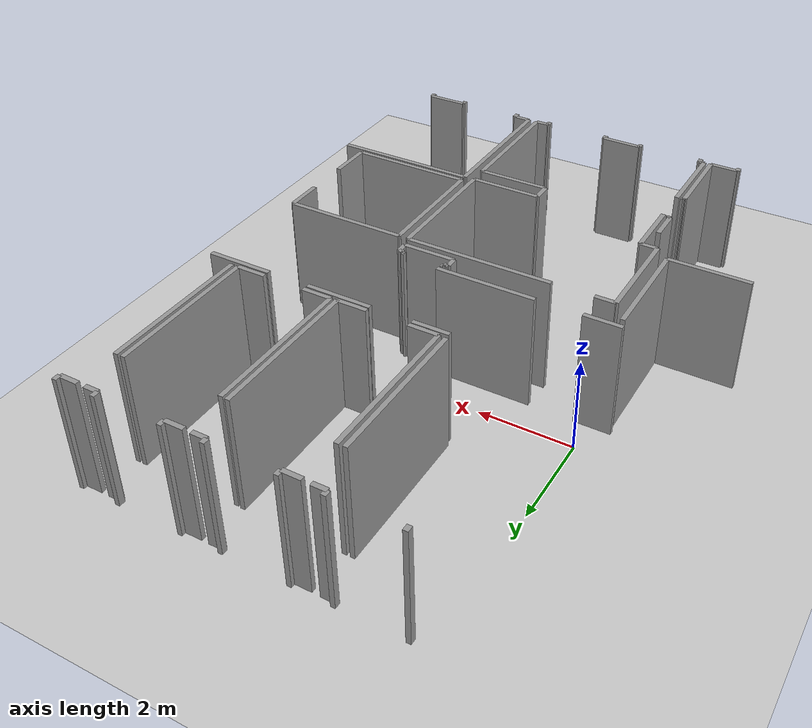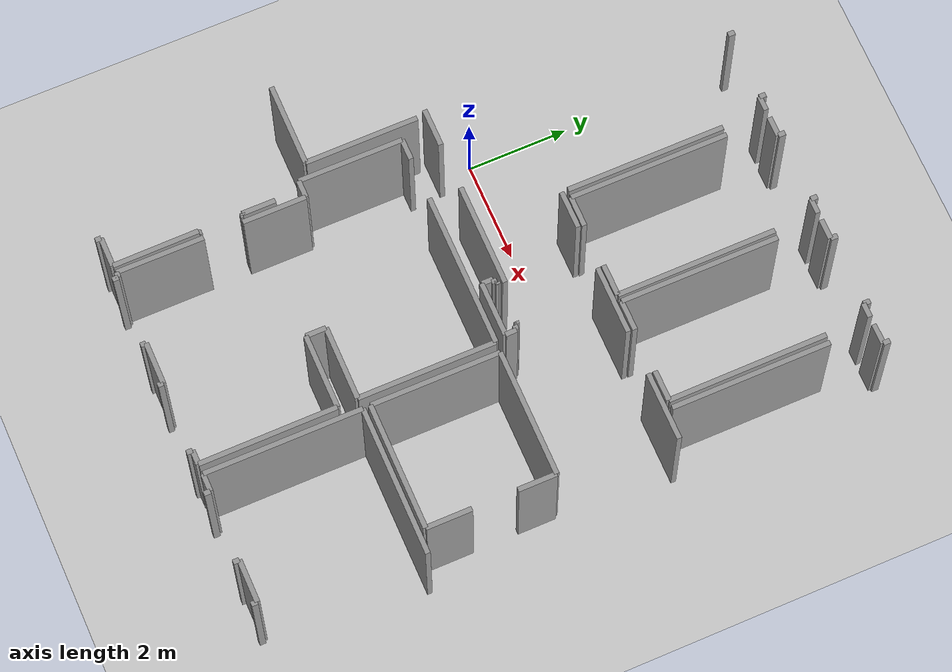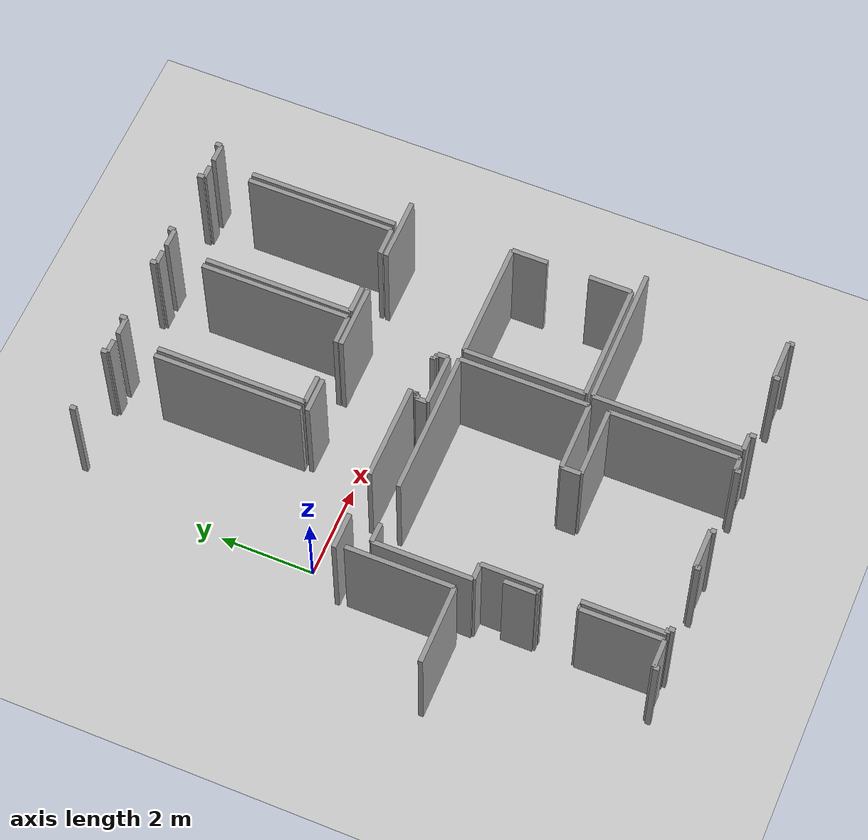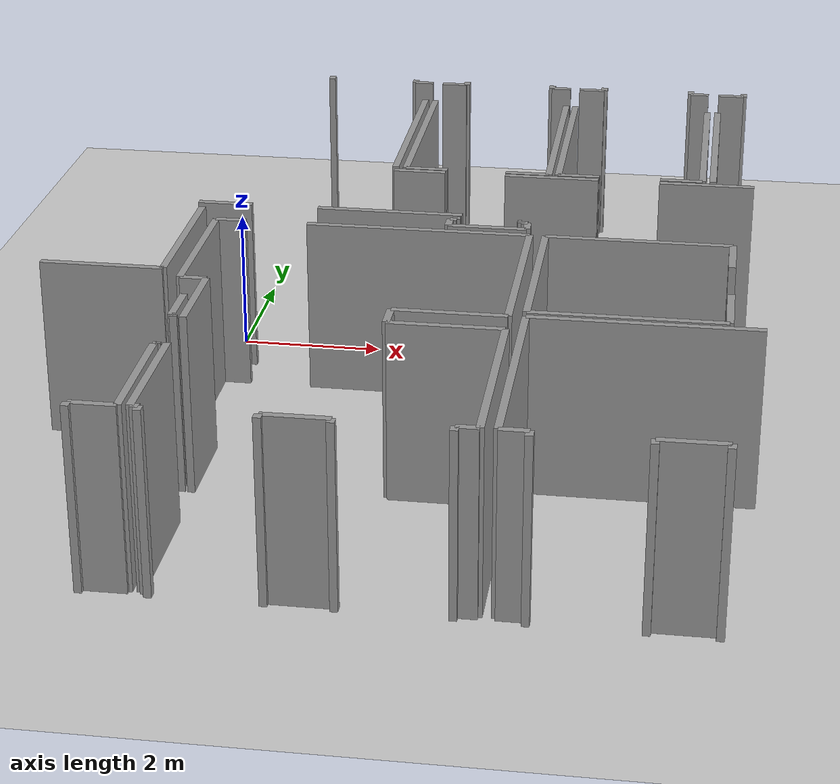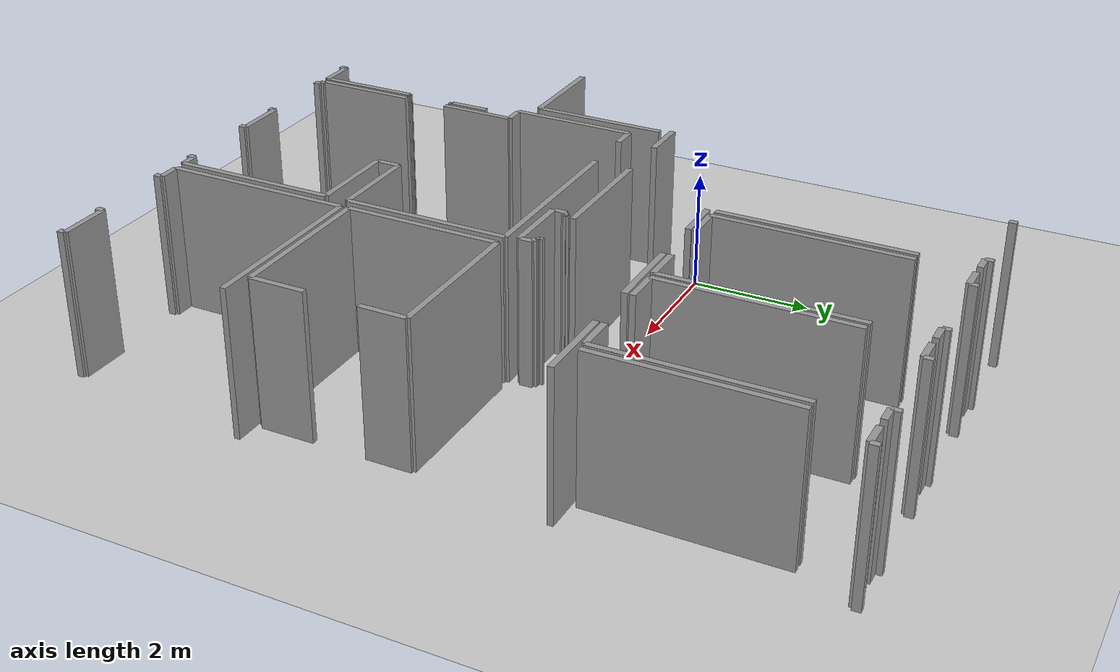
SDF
<sdf version="1.6">
 <world name="default">
  <model name="ground_plane">
   <static>1</static>
   <link name="link">
    <collision name="collision">
     <geometry><plane><normal>0 0 1</normal><size>100 100</size></plane></geometry>
     <surface><friction><ode><mu>100</mu><mu2>50</mu2></ode></friction></surface>
    </collision>
    <visual name="visual">
     <cast_shadows>0</cast_shadows>
     <geometry><plane><normal>0 0 1</normal><size>100 100</size></plane></geometry>
     <material>
      <script><uri>file://media/materials/scripts/gazebo.material</uri><name>Gazebo/Grey</name></script>
     </material>
    </visual>
   </link>
  </model>
  <model name="0510025537_Layout1_PLAN3">
   <static>1</static>
   <link name="Wall_104">
    <collision name="Wall_104_Collision">
     <geometry><box><size>0.597953866684 0.1 2.5</size></box></geometry>
     <pose>0.298976933342 0 1.25 0 0 0</pose>
    </collision>
    <visual name="Wall_104_Visual">
     <pose>0.298976933342 0 1.25 0 0 0</pose>
     <geometry><box><size>0.597953866684 0.1 2.5</size></box></geometry>
     <material>
      <script><uri>file://media/materials/scripts/gazebo.material</uri><name>Gazebo/Grey</name></script>
      <ambient>1 1 1 1</ambient>
     </material>
    </visual>
    <pose>20.3984050327 -12.51546038 0 0 0 3.14159265359</pose>
   </link>
   <link name="Wall_105">
    <collision name="Wall_105_Collision">
     <geometry><box><size>0.113109233018 0.1 2.5</size></box></geometry>
     <pose>0.0565546165089 0 1.25 0 0 0</pose>
    </collision>
    <visual name="Wall_105_Visual">
     <pose>0.0565546165089 0 1.25 0 0 0</pose>
     <geometry><box><size>0.113109233018 0.1 2.5</size></box></geometry>
     <material>
      <script><uri>file://media/materials/scripts/gazebo.material</uri><name>Gazebo/Grey</name></script>
      <ambient>1 1 1 1</ambient>
     </material>
    </visual>
    <pose>19.800451166 -12.51546038 0 0 0 -1.57079632679</pose>
   </link>
   <link name="Wall_117">
    <collision name="Wall_117_Collision">
     <geometry><box><size>0.666581940649 0.1 2.5</size></box></geometry>
     <pose>0.333290970325 0 1.25 0 0 0</pose>
    </collision>
    <visual name="Wall_117_Visual">
     <pose>0.333290970325 0 1.25 0 0 0</pose>
     <geometry><box><size>0.666581940649 0.1 2.5</size></box></geometry>
     <material>
      <script><uri>file://media/materials/scripts/gazebo.material</uri><name>Gazebo/Grey</name></script>
      <ambient>1 1 1 1</ambient>
     </material>
    </visual>
    <pose>20.3827730825 -9.26935248141 0 0 0 -1.57079632679</pose>
   </link>
   <link name="Wall_118">
    <collision name="Wall_118_Collision">
     <geometry><box><size>0.0347588485734 0.1 2.5</size></box></geometry>
     <pose>0.0173794242867 0 1.25 0 0 0</pose>
    </collision>
    <visual name="Wall_118_Visual">
     <pose>0.0173794242867 0 1.25 0 0 0</pose>
     <geometry><box><size>0.0347588485734 0.1 2.5</size></box></geometry>
     <material>
      <script><uri>file://media/materials/scripts/gazebo.material</uri><name>Gazebo/Grey</name></script>
      <ambient>1 1 1 1</ambient>
     </material>
    </visual>
    <pose>20.3827730825 -9.93593442206 0 0 0 0.0</pose>
   </link>
   <link name="Wall_119">
    <collision name="Wall_119_Collision">
     <geometry><box><size>0.0505814322933 0.1 2.5</size></box></geometry>
     <pose>0.0252907161467 0 1.25 0 0 0</pose>
    </collision>
    <visual name="Wall_119_Visual">
     <pose>0.0252907161467 0 1.25 0 0 0</pose>
     <geometry><box><size>0.0505814322933 0.1 2.5</size></box></geometry>
     <material>
      <script><uri>file://media/materials/scripts/gazebo.material</uri><name>Gazebo/Grey</name></script>
      <ambient>1 1 1 1</ambient>
     </material>
    </visual>
    <pose>20.4175319311 -9.93593442206 0 0 0 -1.57079632679</pose>
   </link>
   <link name="Wall_120">
    <collision name="Wall_120_Collision">
     <geometry><box><size>0.047213573108 0.1 2.5</size></box></geometry>
     <pose>0.023606786554 0 1.25 0 0 0</pose>
    </collision>
    <visual name="Wall_120_Visual">
     <pose>0.023606786554 0 1.25 0 0 0</pose>
     <geometry><box><size>0.047213573108 0.1 2.5</size></box></geometry>
     <material>
      <script><uri>file://media/materials/scripts/gazebo.material</uri><name>Gazebo/Grey</name></script>
      <ambient>1 1 1 1</ambient>
     </material>
    </visual>
    <pose>20.4175319311 -10.7590900426 0 0 0 -1.57079632679</pose>
   </link>
   <link name="Wall_121">
    <collision name="Wall_121_Collision">
     <geometry><box><size>0.0317722564657 0.1 2.5</size></box></geometry>
     <pose>0.0158861282328 0 1.25 0 0 0</pose>
    </collision>
    <visual name="Wall_121_Visual">
     <pose>0.0158861282328 0 1.25 0 0 0</pose>
     <geometry><box><size>0.0317722564657 0.1 2.5</size></box></geometry>
     <material>
      <script><uri>file://media/materials/scripts/gazebo.material</uri><name>Gazebo/Grey</name></script>
      <ambient>1 1 1 1</ambient>
     </material>
    </visual>
    <pose>20.4175319311 -10.8063036157 0 0 0 3.14159265359</pose>
   </link>
   <link name="Wall_122">
    <collision name="Wall_122_Collision">
     <geometry><box><size>1.70920354261 0.1 2.5</size></box></geometry>
     <pose>0.854601771306 0 1.25 0 0 0</pose>
    </collision>
    <visual name="Wall_122_Visual">
     <pose>0.854601771306 0 1.25 0 0 0</pose>
     <geometry><box><size>1.70920354261 0.1 2.5</size></box></geometry>
     <material>
      <script><uri>file://media/materials/scripts/gazebo.material</uri><name>Gazebo/Grey</name></script>
      <ambient>1 1 1 1</ambient>
     </material>
    </visual>
    <pose>20.3857596747 -10.8063036157 0 0 0 -1.56339786715</pose>
   </link>
   <link name="Wall_126">
    <collision name="Wall_126_Collision">
     <geometry><box><size>2.05985893118 0.1 2.5</size></box></geometry>
     <pose>1.02992946559 0 1.25 0 0 0</pose>
    </collision>
    <visual name="Wall_126_Visual">
     <pose>1.02992946559 0 1.25 0 0 0</pose>
     <geometry><box><size>2.05985893118 0.1 2.5</size></box></geometry>
     <material>
      <script><uri>file://media/materials/scripts/gazebo.material</uri><name>Gazebo/Grey</name></script>
      <ambient>1 1 1 1</ambient>
     </material>
    </visual>
    <pose>23.5775370147 -6.00824807778 0 0 0 3.14159265359</pose>
   </link>
   <link name="Wall_127">
    <collision name="Wall_127_Collision">
     <geometry><box><size>0.773654444939 0.1 2.5</size></box></geometry>
     <pose>0.386827222469 0 1.25 0 0 0</pose>
    </collision>
    <visual name="Wall_127_Visual">
     <pose>0.386827222469 0 1.25 0 0 0</pose>
     <geometry><box><size>0.773654444939 0.1 2.5</size></box></geometry>
     <material>
      <script><uri>file://media/materials/scripts/gazebo.material</uri><name>Gazebo/Grey</name></script>
      <ambient>1 1 1 1</ambient>
     </material>
    </visual>
    <pose>20.5708648408 -6.00824807778 0 0 0 3.14159265359</pose>
   </link>
   <link name="Wall_138">
    <collision name="Wall_138_Collision">
     <geometry><box><size>0.762534155176 0.1 2.5</size></box></geometry>
     <pose>0.381267077588 0 1.25 0 0 0</pose>
    </collision>
    <visual name="Wall_138_Visual">
     <pose>0.381267077588 0 1.25 0 0 0</pose>
     <geometry><box><size>0.762534155176 0.1 2.5</size></box></geometry>
     <material>
      <script><uri>file://media/materials/scripts/gazebo.material</uri><name>Gazebo/Grey</name></script>
      <ambient>1 1 1 1</ambient>
     </material>
    </visual>
    <pose>22.3489674017 -4.32654254305 0 0 0 0.0</pose>
   </link>
   <link name="Wall_139">
    <collision name="Wall_139_Collision">
     <geometry><box><size>1.37046451039 0.1 2.5</size></box></geometry>
     <pose>0.685232255195 0 1.25 0 0 0</pose>
    </collision>
    <visual name="Wall_139_Visual">
     <pose>0.685232255195 0 1.25 0 0 0</pose>
     <geometry><box><size>1.37046451039 0.1 2.5</size></box></geometry>
     <material>
      <script><uri>file://media/materials/scripts/gazebo.material</uri><name>Gazebo/Grey</name></script>
      <ambient>1 1 1 1</ambient>
     </material>
    </visual>
    <pose>23.9994725805 -4.32654254305 0 0 0 0.0</pose>
   </link>
   <link name="Wall_140">
    <collision name="Wall_140_Collision">
     <geometry><box><size>1.36506322679 0.1 2.5</size></box></geometry>
     <pose>0.682531613395 0 1.25 0 0 0</pose>
    </collision>
    <visual name="Wall_140_Visual">
     <pose>0.682531613395 0 1.25 0 0 0</pose>
     <geometry><box><size>1.36506322679 0.1 2.5</size></box></geometry>
     <material>
      <script><uri>file://media/materials/scripts/gazebo.material</uri><name>Gazebo/Grey</name></script>
      <ambient>1 1 1 1</ambient>
     </material>
    </visual>
    <pose>26.2610853403 -4.32654254305 0 0 0 0.0</pose>
   </link>
   <link name="Wall_156">
    <collision name="Wall_156_Collision">
     <geometry><box><size>0.127857914469 0.1 2.5</size></box></geometry>
     <pose>0.0639289572345 0 1.25 0 0 0</pose>
    </collision>
    <visual name="Wall_156_Visual">
     <pose>0.0639289572345 0 1.25 0 0 0</pose>
     <geometry><box><size>0.127857914469 0.1 2.5</size></box></geometry>
     <material>
      <script><uri>file://media/materials/scripts/gazebo.material</uri><name>Gazebo/Grey</name></script>
      <ambient>1 1 1 1</ambient>
     </material>
    </visual>
    <pose>20.647817246 -0.13695113427 0 0 0 1.57079632679</pose>
   </link>
   <link name="Wall_157">
    <collision name="Wall_157_Collision">
     <geometry><box><size>0.125780008896 0.1 2.5</size></box></geometry>
     <pose>0.0628900044481 0 1.25 0 0 0</pose>
    </collision>
    <visual name="Wall_157_Visual">
     <pose>0.0628900044481 0 1.25 0 0 0</pose>
     <geometry><box><size>0.125780008896 0.1 2.5</size></box></geometry>
     <material>
      <script><uri>file://media/materials/scripts/gazebo.material</uri><name>Gazebo/Grey</name></script>
      <ambient>1 1 1 1</ambient>
     </material>
    </visual>
    <pose>22.0511978141 -0.00909321980047 0 0 0 -1.57079632679</pose>
   </link>
   <link name="Wall_158">
    <collision name="Wall_158_Collision">
     <geometry><box><size>0.293766283281 0.1 2.5</size></box></geometry>
     <pose>0.146883141641 0 1.25 0 0 0</pose>
    </collision>
    <visual name="Wall_158_Visual">
     <pose>0.146883141641 0 1.25 0 0 0</pose>
     <geometry><box><size>0.293766283281 0.1 2.5</size></box></geometry>
     <material>
      <script><uri>file://media/materials/scripts/gazebo.material</uri><name>Gazebo/Grey</name></script>
      <ambient>1 1 1 1</ambient>
     </material>
    </visual>
    <pose>22.0511978141 -0.134873228697 0 0 0 0.0</pose>
   </link>
   <link name="Wall_159">
    <collision name="Wall_159_Collision">
     <geometry><box><size>3.17007910583 0.1 2.5</size></box></geometry>
     <pose>1.58503955292 0 1.25 0 0 0</pose>
    </collision>
    <visual name="Wall_159_Visual">
     <pose>1.58503955292 0 1.25 0 0 0</pose>
     <geometry><box><size>3.17007910583 0.1 2.5</size></box></geometry>
     <material>
      <script><uri>file://media/materials/scripts/gazebo.material</uri><name>Gazebo/Grey</name></script>
      <ambient>1 1 1 1</ambient>
     </material>
    </visual>
    <pose>22.3449640974 -1.02696193684 0 0 0 -1.56961366636</pose>
   </link>
   <link name="Wall_169">
    <collision name="Wall_169_Collision">
     <geometry><box><size>1.67643134015 0.1 2.5</size></box></geometry>
     <pose>0.838215670077 0 1.25 0 0 0</pose>
    </collision>
    <visual name="Wall_169_Visual">
     <pose>0.838215670077 0 1.25 0 0 0</pose>
     <geometry><box><size>1.67643134015 0.1 2.5</size></box></geometry>
     <material>
      <script><uri>file://media/materials/scripts/gazebo.material</uri><name>Gazebo/Grey</name></script>
      <ambient>1 1 1 1</ambient>
     </material>
    </visual>
    <pose>19.8982461714 -8.46379869098 0 0 0 3.14159265359</pose>
   </link>
   <link name="Wall_175">
    <collision name="Wall_175_Collision">
     <geometry><box><size>2.26390791041 0.1 2.5</size></box></geometry>
     <pose>1.1319539552 0 1.25 0 0 0</pose>
    </collision>
    <visual name="Wall_175_Visual">
     <pose>1.1319539552 0 1.25 0 0 0</pose>
     <geometry><box><size>2.26390791041 0.1 2.5</size></box></geometry>
     <material>
      <script><uri>file://media/materials/scripts/gazebo.material</uri><name>Gazebo/Grey</name></script>
      <ambient>1 1 1 1</ambient>
     </material>
    </visual>
    <pose>19.8924000763 -6.19989832878 0 0 0 -1.56821402137</pose>
   </link>
   <link name="Wall_176">
    <collision name="Wall_176_Collision">
     <geometry><box><size>0.635063862236 0.1 2.5</size></box></geometry>
     <pose>0.317531931118 0 1.25 0 0 0</pose>
    </collision>
    <visual name="Wall_176_Visual">
     <pose>0.317531931118 0 1.25 0 0 0</pose>
     <geometry><box><size>0.635063862236 0.1 2.5</size></box></geometry>
     <material>
      <script><uri>file://media/materials/scripts/gazebo.material</uri><name>Gazebo/Grey</name></script>
      <ambient>1 1 1 1</ambient>
     </material>
    </visual>
    <pose>24.6304060494 -4.20955709474 0 0 0 3.14159265359</pose>
   </link>
   <link name="Wall_177">
    <collision name="Wall_177_Collision">
     <geometry><box><size>0.618860011438 0.1 2.5</size></box></geometry>
     <pose>0.309430005719 0 1.25 0 0 0</pose>
    </collision>
    <visual name="Wall_177_Visual">
     <pose>0.309430005719 0 1.25 0 0 0</pose>
     <geometry><box><size>0.618860011438 0.1 2.5</size></box></geometry>
     <material>
      <script><uri>file://media/materials/scripts/gazebo.material</uri><name>Gazebo/Grey</name></script>
      <ambient>1 1 1 1</ambient>
     </material>
    </visual>
    <pose>23.1280866747 -4.20955709474 0 0 0 3.14159265359</pose>
   </link>
   <link name="Wall_178">
    <collision name="Wall_178_Collision">
     <geometry><box><size>3.18373895914 0.1 2.5</size></box></geometry>
     <pose>1.59186947957 0 1.25 0 0 0</pose>
    </collision>
    <visual name="Wall_178_Visual">
     <pose>1.59186947957 0 1.25 0 0 0</pose>
     <geometry><box><size>3.18373895914 0.1 2.5</size></box></geometry>
     <material>
      <script><uri>file://media/materials/scripts/gazebo.material</uri><name>Gazebo/Grey</name></script>
      <ambient>1 1 1 1</ambient>
     </material>
    </visual>
    <pose>22.5092266633 -4.20955709474 0 0 0 1.57079632679</pose>
   </link>
   <link name="Wall_179">
    <collision name="Wall_179_Collision">
     <geometry><box><size>0.39562813751 0.1 2.5</size></box></geometry>
     <pose>0.197814068755 0 1.25 0 0 0</pose>
    </collision>
    <visual name="Wall_179_Visual">
     <pose>0.197814068755 0 1.25 0 0 0</pose>
     <geometry><box><size>0.39562813751 0.1 2.5</size></box></geometry>
     <material>
      <script><uri>file://media/materials/scripts/gazebo.material</uri><name>Gazebo/Grey</name></script>
      <ambient>1 1 1 1</ambient>
     </material>
    </visual>
    <pose>22.5092266633 -0.144226981 0 0 0 0.0</pose>
   </link>
   <link name="Wall_180">
    <collision name="Wall_180_Collision">
     <geometry><box><size>0.134752494122 0.1 2.5</size></box></geometry>
     <pose>0.0673762470611 0 1.25 0 0 0</pose>
    </collision>
    <visual name="Wall_180_Visual">
     <pose>0.0673762470611 0 1.25 0 0 0</pose>
     <geometry><box><size>0.134752494122 0.1 2.5</size></box></geometry>
     <material>
      <script><uri>file://media/materials/scripts/gazebo.material</uri><name>Gazebo/Grey</name></script>
      <ambient>1 1 1 1</ambient>
     </material>
    </visual>
    <pose>22.9048548008 -0.144226981 0 0 0 1.57079632679</pose>
   </link>
   <link name="Wall_181">
    <collision name="Wall_181_Collision">
     <geometry><box><size>0.126370972866 0.1 2.5</size></box></geometry>
     <pose>0.0631854864332 0 1.25 0 0 0</pose>
    </collision>
    <visual name="Wall_181_Visual">
     <pose>0.0631854864332 0 1.25 0 0 0</pose>
     <geometry><box><size>0.126370972866 0.1 2.5</size></box></geometry>
     <material>
      <script><uri>file://media/materials/scripts/gazebo.material</uri><name>Gazebo/Grey</name></script>
      <ambient>1 1 1 1</ambient>
     </material>
    </visual>
    <pose>24.316051344 -0.00947448687806 0 0 0 -1.57079632679</pose>
   </link>
   <link name="Wall_182">
    <collision name="Wall_182_Collision">
     <geometry><box><size>0.306475185868 0.1 2.5</size></box></geometry>
     <pose>0.153237592934 0 1.25 0 0 0</pose>
    </collision>
    <visual name="Wall_182_Visual">
     <pose>0.153237592934 0 1.25 0 0 0</pose>
     <geometry><box><size>0.306475185868 0.1 2.5</size></box></geometry>
     <material>
      <script><uri>file://media/materials/scripts/gazebo.material</uri><name>Gazebo/Grey</name></script>
      <ambient>1 1 1 1</ambient>
     </material>
    </visual>
    <pose>24.316051344 -0.135845459745 0 0 0 0.0</pose>
   </link>
   <link name="Wall_183">
    <collision name="Wall_183_Collision">
     <geometry><box><size>3.19530106694 0.1 2.5</size></box></geometry>
     <pose>1.59765053347 0 1.25 0 0 0</pose>
    </collision>
    <visual name="Wall_183_Visual">
     <pose>1.59765053347 0 1.25 0 0 0</pose>
     <geometry><box><size>3.19530106694 0.1 2.5</size></box></geometry>
     <material>
      <script><uri>file://media/materials/scripts/gazebo.material</uri><name>Gazebo/Grey</name></script>
      <ambient>1 1 1 1</ambient>
     </material>
    </visual>
    <pose>24.6225265298 -1.01426574315 0 0 0 -1.56833035335</pose>
   </link>
   <link name="Wall_184">
    <collision name="Wall_184_Collision">
     <geometry><box><size>0.614983796149 0.1 2.5</size></box></geometry>
     <pose>0.307491898075 0 1.25 0 0 0</pose>
    </collision>
    <visual name="Wall_184_Visual">
     <pose>0.307491898075 0 1.25 0 0 0</pose>
     <geometry><box><size>0.614983796149 0.1 2.5</size></box></geometry>
     <material>
      <script><uri>file://media/materials/scripts/gazebo.material</uri><name>Gazebo/Grey</name></script>
      <ambient>1 1 1 1</ambient>
     </material>
    </visual>
    <pose>26.8796911737 -4.1970388257 0 0 0 3.14159265359</pose>
   </link>
   <link name="Wall_185">
    <collision name="Wall_185_Collision">
     <geometry><box><size>0.609709601576 0.1 2.5</size></box></geometry>
     <pose>0.304854800788 0 1.25 0 0 0</pose>
    </collision>
    <visual name="Wall_185_Visual">
     <pose>0.304854800788 0 1.25 0 0 0</pose>
     <geometry><box><size>0.609709601576 0.1 2.5</size></box></geometry>
     <material>
      <script><uri>file://media/materials/scripts/gazebo.material</uri><name>Gazebo/Grey</name></script>
      <ambient>1 1 1 1</ambient>
     </material>
    </visual>
    <pose>25.3807396581 -4.1970388257 0 0 0 3.14159265359</pose>
   </link>
   <link name="Wall_186">
    <collision name="Wall_186_Collision">
     <geometry><box><size>3.16758594395 0.1 2.5</size></box></geometry>
     <pose>1.58379297198 0 1.25 0 0 0</pose>
    </collision>
    <visual name="Wall_186_Visual">
     <pose>1.58379297198 0 1.25 0 0 0</pose>
     <geometry><box><size>3.16758594395 0.1 2.5</size></box></geometry>
     <material>
      <script><uri>file://media/materials/scripts/gazebo.material</uri><name>Gazebo/Grey</name></script>
      <ambient>1 1 1 1</ambient>
     </material>
    </visual>
    <pose>24.7710300566 -4.1970388257 0 0 0 1.57079632679</pose>
   </link>
   <link name="Wall_187">
    <collision name="Wall_187_Collision">
     <geometry><box><size>0.403253479062 0.1 2.5</size></box></geometry>
     <pose>0.201626739531 0 1.25 0 0 0</pose>
    </collision>
    <visual name="Wall_187_Visual">
     <pose>0.201626739531 0 1.25 0 0 0</pose>
     <geometry><box><size>0.403253479062 0.1 2.5</size></box></geometry>
     <material>
      <script><uri>file://media/materials/scripts/gazebo.material</uri><name>Gazebo/Grey</name></script>
      <ambient>1 1 1 1</ambient>
     </material>
    </visual>
    <pose>24.7710300566 -0.139321344602 0 0 0 0.0</pose>
   </link>
   <link name="Wall_188">
    <collision name="Wall_188_Collision">
     <geometry><box><size>0.138056808795 0.1 2.5</size></box></geometry>
     <pose>0.0690284043973 0 1.25 0 0 0</pose>
    </collision>
    <visual name="Wall_188_Visual">
     <pose>0.0690284043973 0 1.25 0 0 0</pose>
     <geometry><box><size>0.138056808795 0.1 2.5</size></box></geometry>
     <material>
      <script><uri>file://media/materials/scripts/gazebo.material</uri><name>Gazebo/Grey</name></script>
      <ambient>1 1 1 1</ambient>
     </material>
    </visual>
    <pose>25.1742835356 -0.139321344602 0 0 0 1.57079632679</pose>
   </link>
   <link name="Wall_189">
    <collision name="Wall_189_Collision">
     <geometry><box><size>0.139391243566 0.1 2.5</size></box></geometry>
     <pose>0.0696956217831 0 1.25 0 0 0</pose>
    </collision>
    <visual name="Wall_189_Visual">
     <pose>0.0696956217831 0 1.25 0 0 0</pose>
     <geometry><box><size>0.139391243566 0.1 2.5</size></box></geometry>
     <material>
      <script><uri>file://media/materials/scripts/gazebo.material</uri><name>Gazebo/Grey</name></script>
      <ambient>1 1 1 1</ambient>
     </material>
    </visual>
    <pose>26.5852894453 -0.00126453580733 0 0 0 -1.57079632679</pose>
   </link>
   <link name="Wall_190">
    <collision name="Wall_190_Collision">
     <geometry><box><size>0.285696130139 0.1 2.5</size></box></geometry>
     <pose>0.14284806507 0 1.25 0 0 0</pose>
    </collision>
    <visual name="Wall_190_Visual">
     <pose>0.14284806507 0 1.25 0 0 0</pose>
     <geometry><box><size>0.285696130139 0.1 2.5</size></box></geometry>
     <material>
      <script><uri>file://media/materials/scripts/gazebo.material</uri><name>Gazebo/Grey</name></script>
      <ambient>1 1 1 1</ambient>
     </material>
    </visual>
    <pose>26.5852894453 -0.140655779373 0 0 0 0.0</pose>
   </link>
   <link name="Wall_191">
    <collision name="Wall_191_Collision">
     <geometry><box><size>3.17344398005 0.1 2.5</size></box></geometry>
     <pose>1.58672199002 0 1.25 0 0 0</pose>
    </collision>
    <visual name="Wall_191_Visual">
     <pose>1.58672199002 0 1.25 0 0 0</pose>
     <geometry><box><size>3.17344398005 0.1 2.5</size></box></geometry>
     <material>
      <script><uri>file://media/materials/scripts/gazebo.material</uri><name>Gazebo/Grey</name></script>
      <ambient>1 1 1 1</ambient>
     </material>
    </visual>
    <pose>26.8709855754 -1.02360678655 0 0 0 -1.56805305821</pose>
   </link>
   <link name="Wall_194">
    <collision name="Wall_194_Collision">
     <geometry><box><size>3.17903666518 0.1 2.5</size></box></geometry>
     <pose>1.58951833259 0 1.25 0 0 0</pose>
    </collision>
    <visual name="Wall_194_Visual">
     <pose>1.58951833259 0 1.25 0 0 0</pose>
     <geometry><box><size>3.17903666518 0.1 2.5</size></box></geometry>
     <material>
      <script><uri>file://media/materials/scripts/gazebo.material</uri><name>Gazebo/Grey</name></script>
      <ambient>1 1 1 1</ambient>
     </material>
    </visual>
    <pose>27.0328334498 -4.20485480079 0 0 0 1.57079632679</pose>
   </link>
   <link name="Wall_195">
    <collision name="Wall_195_Collision">
     <geometry><box><size>0.401283599161 0.1 2.5</size></box></geometry>
     <pose>0.200641799581 0 1.25 0 0 0</pose>
    </collision>
    <visual name="Wall_195_Visual">
     <pose>0.200641799581 0 1.25 0 0 0</pose>
     <geometry><box><size>0.401283599161 0.1 2.5</size></box></geometry>
     <material>
      <script><uri>file://media/materials/scripts/gazebo.material</uri><name>Gazebo/Grey</name></script>
      <ambient>1 1 1 1</ambient>
     </material>
    </visual>
    <pose>27.0328334498 -0.142956090742 0 0 0 0.0</pose>
   </link>
   <link name="Wall_196">
    <collision name="Wall_196_Collision">
     <geometry><box><size>0.134428417106 0.1 2.5</size></box></geometry>
     <pose>0.0672142085531 0 1.25 0 0 0</pose>
    </collision>
    <visual name="Wall_196_Visual">
     <pose>0.0672142085531 0 1.25 0 0 0</pose>
     <geometry><box><size>0.134428417106 0.1 2.5</size></box></geometry>
     <material>
      <script><uri>file://media/materials/scripts/gazebo.material</uri><name>Gazebo/Grey</name></script>
      <ambient>1 1 1 1</ambient>
     </material>
    </visual>
    <pose>27.434117049 -0.142956090742 0 0 0 1.57079632679</pose>
   </link>
   <link name="Wall_226">
    <collision name="Wall_226_Collision">
     <geometry><box><size>0.284107517316 0.1 2.5</size></box></geometry>
     <pose>0.142053758658 0 1.25 0 0 0</pose>
    </collision>
    <visual name="Wall_226_Visual">
     <pose>0.142053758658 0 1.25 0 0 0</pose>
     <geometry><box><size>0.284107517316 0.1 2.5</size></box></geometry>
     <material>
      <script><uri>file://media/materials/scripts/gazebo.material</uri><name>Gazebo/Grey</name></script>
      <ambient>1 1 1 1</ambient>
     </material>
    </visual>
    <pose>24.6094999047 -12.5073902269 0 0 0 3.14159265359</pose>
   </link>
   <link name="Wall_227">
    <collision name="Wall_227_Collision">
     <geometry><box><size>0.116985448307 0.1 2.5</size></box></geometry>
     <pose>0.0584927241533 0 1.25 0 0 0</pose>
    </collision>
    <visual name="Wall_227_Visual">
     <pose>0.0584927241533 0 1.25 0 0 0</pose>
     <geometry><box><size>0.116985448307 0.1 2.5</size></box></geometry>
     <material>
      <script><uri>file://media/materials/scripts/gazebo.material</uri><name>Gazebo/Grey</name></script>
      <ambient>1 1 1 1</ambient>
     </material>
    </visual>
    <pose>24.3253923874 -12.5073902269 0 0 0 -1.57079632679</pose>
   </link>
   <link name="Wall_228">
    <collision name="Wall_228_Collision">
     <geometry><box><size>0.110440363475 0.1 2.5</size></box></geometry>
     <pose>0.0552201817373 0 1.25 0 0 0</pose>
    </collision>
    <visual name="Wall_228_Visual">
     <pose>0.0552201817373 0 1.25 0 0 0</pose>
     <geometry><box><size>0.110440363475 0.1 2.5</size></box></geometry>
     <material>
      <script><uri>file://media/materials/scripts/gazebo.material</uri><name>Gazebo/Grey</name></script>
      <ambient>1 1 1 1</ambient>
     </material>
    </visual>
    <pose>22.910827985 -12.6243756752 0 0 0 1.57079632679</pose>
   </link>
   <link name="Wall_229">
    <collision name="Wall_229_Collision">
     <geometry><box><size>0.850162038508 0.1 2.5</size></box></geometry>
     <pose>0.425081019254 0 1.25 0 0 0</pose>
    </collision>
    <visual name="Wall_229_Visual">
     <pose>0.425081019254 0 1.25 0 0 0</pose>
     <geometry><box><size>0.850162038508 0.1 2.5</size></box></geometry>
     <material>
      <script><uri>file://media/materials/scripts/gazebo.material</uri><name>Gazebo/Grey</name></script>
      <ambient>1 1 1 1</ambient>
     </material>
    </visual>
    <pose>22.910827985 -12.5139353117 0 0 0 3.14159265359</pose>
   </link>
   <link name="Wall_230">
    <collision name="Wall_230_Collision">
     <geometry><box><size>0.108978839677 0.1 2.5</size></box></geometry>
     <pose>0.0544894198386 0 1.25 0 0 0</pose>
    </collision>
    <visual name="Wall_230_Visual">
     <pose>0.0544894198386 0 1.25 0 0 0</pose>
     <geometry><box><size>0.108978839677 0.1 2.5</size></box></geometry>
     <material>
      <script><uri>file://media/materials/scripts/gazebo.material</uri><name>Gazebo/Grey</name></script>
      <ambient>1 1 1 1</ambient>
     </material>
    </visual>
    <pose>22.0606659465 -12.5139353117 0 0 0 -1.57079632679</pose>
   </link>
   <link name="Wall_231">
    <collision name="Wall_231_Collision">
     <geometry><box><size>0.119908495901 0.1 2.5</size></box></geometry>
     <pose>0.0599542479507 0 1.25 0 0 0</pose>
    </collision>
    <visual name="Wall_231_Visual">
     <pose>0.0599542479507 0 1.25 0 0 0</pose>
     <geometry><box><size>0.119908495901 0.1 2.5</size></box></geometry>
     <material>
      <script><uri>file://media/materials/scripts/gazebo.material</uri><name>Gazebo/Grey</name></script>
      <ambient>1 1 1 1</ambient>
     </material>
    </visual>
    <pose>20.6546165089 -12.6229141514 0 0 0 1.57079632679</pose>
   </link>
   <link name="Wall_232">
    <collision name="Wall_232_Collision">
     <geometry><box><size>0.108978839677 0.1 2.5</size></box></geometry>
     <pose>0.0544894198386 0 1.25 0 0 0</pose>
    </collision>
    <visual name="Wall_232_Visual">
     <pose>0.0544894198386 0 1.25 0 0 0</pose>
     <geometry><box><size>0.108978839677 0.1 2.5</size></box></geometry>
     <material>
      <script><uri>file://media/materials/scripts/gazebo.material</uri><name>Gazebo/Grey</name></script>
      <ambient>1 1 1 1</ambient>
     </material>
    </visual>
    <pose>20.6546165089 -12.5030056555 0 0 0 3.14159265359</pose>
   </link>
   <link name="Wall_233">
    <collision name="Wall_233_Collision">
     <geometry><box><size>1.73374849082 0.1 2.5</size></box></geometry>
     <pose>0.866874245409 0 1.25 0 0 0</pose>
    </collision>
    <visual name="Wall_233_Visual">
     <pose>0.866874245409 0 1.25 0 0 0</pose>
     <geometry><box><size>1.73374849082 0.1 2.5</size></box></geometry>
     <material>
      <script><uri>file://media/materials/scripts/gazebo.material</uri><name>Gazebo/Grey</name></script>
      <ambient>1 1 1 1</ambient>
     </material>
    </visual>
    <pose>20.5456376692 -12.5030056555 0 0 0 1.57079632679</pose>
   </link>
   <link name="Wall_234">
    <collision name="Wall_234_Collision">
     <geometry><box><size>1.26885683421 0.1 2.5</size></box></geometry>
     <pose>0.634428417106 0 1.25 0 0 0</pose>
    </collision>
    <visual name="Wall_234_Visual">
     <pose>0.634428417106 0 1.25 0 0 0</pose>
     <geometry><box><size>1.26885683421 0.1 2.5</size></box></geometry>
     <material>
      <script><uri>file://media/materials/scripts/gazebo.material</uri><name>Gazebo/Grey</name></script>
      <ambient>1 1 1 1</ambient>
     </material>
    </visual>
    <pose>20.5456376692 -9.99210777149 0 0 0 1.57079632679</pose>
   </link>
   <link name="Wall_235">
    <collision name="Wall_235_Collision">
     <geometry><box><size>0.354324204105 0.1 2.5</size></box></geometry>
     <pose>0.177162102052 0 1.25 0 0 0</pose>
    </collision>
    <visual name="Wall_235_Visual">
     <pose>0.177162102052 0 1.25 0 0 0</pose>
     <geometry><box><size>0.354324204105 0.1 2.5</size></box></geometry>
     <material>
      <script><uri>file://media/materials/scripts/gazebo.material</uri><name>Gazebo/Grey</name></script>
      <ambient>1 1 1 1</ambient>
     </material>
    </visual>
    <pose>20.5456376692 -8.72325093728 0 0 0 3.14159265359</pose>
   </link>
   <link name="Wall_236">
    <collision name="Wall_236_Collision">
     <geometry><box><size>2.09144055411 0.1 2.5</size></box></geometry>
     <pose>1.04572027705 0 1.25 0 0 0</pose>
    </collision>
    <visual name="Wall_236_Visual">
     <pose>1.04572027705 0 1.25 0 0 0</pose>
     <geometry><box><size>2.09144055411 0.1 2.5</size></box></geometry>
     <material>
      <script><uri>file://media/materials/scripts/gazebo.material</uri><name>Gazebo/Grey</name></script>
      <ambient>1 1 1 1</ambient>
     </material>
    </visual>
    <pose>20.1913134651 -8.72325093728 0 0 0 1.57079632679</pose>
   </link>
   <link name="Wall_237">
    <collision name="Wall_237_Collision">
     <geometry><box><size>0.423333545148 0.1 2.5</size></box></geometry>
     <pose>0.211666772574 0 1.25 0 0 0</pose>
    </collision>
    <visual name="Wall_237_Visual">
     <pose>0.211666772574 0 1.25 0 0 0</pose>
     <geometry><box><size>0.423333545148 0.1 2.5</size></box></geometry>
     <material>
      <script><uri>file://media/materials/scripts/gazebo.material</uri><name>Gazebo/Grey</name></script>
      <ambient>1 1 1 1</ambient>
     </material>
    </visual>
    <pose>20.1913134651 -6.63181038317 0 0 0 0.0</pose>
   </link>
   <link name="Wall_238">
    <collision name="Wall_238_Collision">
     <geometry><box><size>3.10478490182 0.1 2.5</size></box></geometry>
     <pose>1.55239245091 0 1.25 0 0 0</pose>
    </collision>
    <visual name="Wall_238_Visual">
     <pose>1.55239245091 0 1.25 0 0 0</pose>
     <geometry><box><size>3.10478490182 0.1 2.5</size></box></geometry>
     <material>
      <script><uri>file://media/materials/scripts/gazebo.material</uri><name>Gazebo/Grey</name></script>
      <ambient>1 1 1 1</ambient>
     </material>
    </visual>
    <pose>21.4838088581 -6.63181038317 0 0 0 0.0</pose>
   </link>
   <link name="Wall_239">
    <collision name="Wall_239_Collision">
     <geometry><box><size>2.74613967084 0.1 2.5</size></box></geometry>
     <pose>1.37306983542 0 1.25 0 0 0</pose>
    </collision>
    <visual name="Wall_239_Visual">
     <pose>1.37306983542 0 1.25 0 0 0</pose>
     <geometry><box><size>2.74613967084 0.1 2.5</size></box></geometry>
     <material>
      <script><uri>file://media/materials/scripts/gazebo.material</uri><name>Gazebo/Grey</name></script>
      <ambient>1 1 1 1</ambient>
     </material>
    </visual>
    <pose>24.5885937599 -6.63181038317 0 0 0 -1.57079632679</pose>
   </link>
   <link name="Wall_240">
    <collision name="Wall_240_Collision">
     <geometry><box><size>1.49158035204 0.1 2.5</size></box></geometry>
     <pose>0.745790176018 0 1.25 0 0 0</pose>
    </collision>
    <visual name="Wall_240_Visual">
     <pose>0.745790176018 0 1.25 0 0 0</pose>
     <geometry><box><size>1.49158035204 0.1 2.5</size></box></geometry>
     <material>
      <script><uri>file://media/materials/scripts/gazebo.material</uri><name>Gazebo/Grey</name></script>
      <ambient>1 1 1 1</ambient>
     </material>
    </visual>
    <pose>24.5885937599 -9.37795005401 0 0 0 3.14159265359</pose>
   </link>
   <link name="Wall_241">
    <collision name="Wall_241_Collision">
     <geometry><box><size>0.401092965622 0.1 2.5</size></box></geometry>
     <pose>0.200546482811 0 1.25 0 0 0</pose>
    </collision>
    <visual name="Wall_241_Visual">
     <pose>0.200546482811 0 1.25 0 0 0</pose>
     <geometry><box><size>0.401092965622 0.1 2.5</size></box></geometry>
     <material>
      <script><uri>file://media/materials/scripts/gazebo.material</uri><name>Gazebo/Grey</name></script>
      <ambient>1 1 1 1</ambient>
     </material>
    </visual>
    <pose>23.0970134079 -9.37795005401 0 0 0 -1.57079632679</pose>
   </link>
   <link name="Wall_242">
    <collision name="Wall_242_Collision">
     <geometry><box><size>1.5041621656 0.1 2.5</size></box></geometry>
     <pose>0.752081082798 0 1.25 0 0 0</pose>
    </collision>
    <visual name="Wall_242_Visual">
     <pose>0.752081082798 0 1.25 0 0 0</pose>
     <geometry><box><size>1.5041621656 0.1 2.5</size></box></geometry>
     <material>
      <script><uri>file://media/materials/scripts/gazebo.material</uri><name>Gazebo/Grey</name></script>
      <ambient>1 1 1 1</ambient>
     </material>
    </visual>
    <pose>23.0970134079 -9.77904301964 0 0 0 0.0</pose>
   </link>
   <link name="Wall_243">
    <collision name="Wall_243_Collision">
     <geometry><box><size>2.72835990618 0.1 2.5</size></box></geometry>
     <pose>1.36417995309 0 1.25 0 0 0</pose>
    </collision>
    <visual name="Wall_243_Visual">
     <pose>1.36417995309 0 1.25 0 0 0</pose>
     <geometry><box><size>2.72835990618 0.1 2.5</size></box></geometry>
     <material>
      <script><uri>file://media/materials/scripts/gazebo.material</uri><name>Gazebo/Grey</name></script>
      <ambient>1 1 1 1</ambient>
     </material>
    </visual>
    <pose>24.6011755735 -9.77904301964 0 0 0 -1.56774528353</pose>
   </link>
   <link name="Wall_244">
    <collision name="Wall_244_Collision">
     <geometry><box><size>1.09449069073 0.1 2.5</size></box></geometry>
     <pose>0.547245345364 0 1.25 0 0 0</pose>
    </collision>
    <visual name="Wall_244_Visual">
     <pose>0.547245345364 0 1.25 0 0 0</pose>
     <geometry><box><size>1.09449069073 0.1 2.5</size></box></geometry>
     <material>
      <script><uri>file://media/materials/scripts/gazebo.material</uri><name>Gazebo/Grey</name></script>
      <ambient>1 1 1 1</ambient>
     </material>
    </visual>
    <pose>24.5259388702 -6.41563195018 0 0 0 3.14159265359</pose>
   </link>
   <link name="Wall_245">
    <collision name="Wall_245_Collision">
     <geometry><box><size>0.22977695876 0.1 2.5</size></box></geometry>
     <pose>0.11488847938 0 1.25 0 0 0</pose>
    </collision>
    <visual name="Wall_245_Visual">
     <pose>0.11488847938 0 1.25 0 0 0</pose>
     <geometry><box><size>0.22977695876 0.1 2.5</size></box></geometry>
     <material>
      <script><uri>file://media/materials/scripts/gazebo.material</uri><name>Gazebo/Grey</name></script>
      <ambient>1 1 1 1</ambient>
     </material>
    </visual>
    <pose>23.4314481794 -6.41563195018 0 0 0 1.57079632679</pose>
   </link>
   <link name="Wall_246">
    <collision name="Wall_246_Collision">
     <geometry><box><size>0.0916311876469 0.1 2.5</size></box></geometry>
     <pose>0.0458155938235 0 1.25 0 0 0</pose>
    </collision>
    <visual name="Wall_246_Visual">
     <pose>0.0458155938235 0 1.25 0 0 0</pose>
     <geometry><box><size>0.0916311876469 0.1 2.5</size></box></geometry>
     <material>
      <script><uri>file://media/materials/scripts/gazebo.material</uri><name>Gazebo/Grey</name></script>
      <ambient>1 1 1 1</ambient>
     </material>
    </visual>
    <pose>23.4314481794 -6.18585499142 0 0 0 0.0</pose>
   </link>
   <link name="Wall_247">
    <collision name="Wall_247_Collision">
     <geometry><box><size>0.0505178877804 0.1 2.5</size></box></geometry>
     <pose>0.0252589438902 0 1.25 0 0 0</pose>
    </collision>
    <visual name="Wall_247_Visual">
     <pose>0.0252589438902 0 1.25 0 0 0</pose>
     <geometry><box><size>0.0505178877804 0.1 2.5</size></box></geometry>
     <material>
      <script><uri>file://media/materials/scripts/gazebo.material</uri><name>Gazebo/Grey</name></script>
      <ambient>1 1 1 1</ambient>
     </material>
    </visual>
    <pose>23.5230793671 -6.18585499142 0 0 0 1.57079632679</pose>
   </link>
   <link name="Wall_248">
    <collision name="Wall_248_Collision">
     <geometry><box><size>0.0410497553536 0.1 2.5</size></box></geometry>
     <pose>0.0205248776768 0 1.25 0 0 0</pose>
    </collision>
    <visual name="Wall_248_Visual">
     <pose>0.0205248776768 0 1.25 0 0 0</pose>
     <geometry><box><size>0.0410497553536 0.1 2.5</size></box></geometry>
     <material>
      <script><uri>file://media/materials/scripts/gazebo.material</uri><name>Gazebo/Grey</name></script>
      <ambient>1 1 1 1</ambient>
     </material>
    </visual>
    <pose>23.5230793671 -6.13533710364 0 0 0 0.0</pose>
   </link>
   <link name="Wall_249">
    <collision name="Wall_249_Collision">
     <geometry><box><size>0.0581432293321 0.1 2.5</size></box></geometry>
     <pose>0.0290716146661 0 1.25 0 0 0</pose>
    </collision>
    <visual name="Wall_249_Visual">
     <pose>0.0290716146661 0 1.25 0 0 0</pose>
     <geometry><box><size>0.0581432293321 0.1 2.5</size></box></geometry>
     <material>
      <script><uri>file://media/materials/scripts/gazebo.material</uri><name>Gazebo/Grey</name></script>
      <ambient>1 1 1 1</ambient>
     </material>
    </visual>
    <pose>24.367713033 -6.13533710364 0 0 0 0.0</pose>
   </link>
   <link name="Wall_250">
    <collision name="Wall_250_Collision">
     <geometry><box><size>0.0532503018364 0.1 2.5</size></box></geometry>
     <pose>0.0266251509182 0 1.25 0 0 0</pose>
    </collision>
    <visual name="Wall_250_Visual">
     <pose>0.0266251509182 0 1.25 0 0 0</pose>
     <geometry><box><size>0.0532503018364 0.1 2.5</size></box></geometry>
     <material>
      <script><uri>file://media/materials/scripts/gazebo.material</uri><name>Gazebo/Grey</name></script>
      <ambient>1 1 1 1</ambient>
     </material>
    </visual>
    <pose>24.4258562623 -6.13533710364 0 0 0 -1.57079632679</pose>
   </link>
   <link name="Wall_251">
    <collision name="Wall_251_Collision">
     <geometry><box><size>0.0944906907289 0.1 2.5</size></box></geometry>
     <pose>0.0472453453644 0 1.25 0 0 0</pose>
    </collision>
    <visual name="Wall_251_Visual">
     <pose>0.0472453453644 0 1.25 0 0 0</pose>
     <geometry><box><size>0.0944906907289 0.1 2.5</size></box></geometry>
     <material>
      <script><uri>file://media/materials/scripts/gazebo.material</uri><name>Gazebo/Grey</name></script>
      <ambient>1 1 1 1</ambient>
     </material>
    </visual>
    <pose>24.4258562623 -6.18858740548 0 0 0 0.0</pose>
   </link>
   <link name="Wall_252">
    <collision name="Wall_252_Collision">
     <geometry><box><size>0.227113396384 0.1 2.5</size></box></geometry>
     <pose>0.113556698192 0 1.25 0 0 0</pose>
    </collision>
    <visual name="Wall_252_Visual">
     <pose>0.113556698192 0 1.25 0 0 0</pose>
     <geometry><box><size>0.227113396384 0.1 2.5</size></box></geometry>
     <material>
      <script><uri>file://media/materials/scripts/gazebo.material</uri><name>Gazebo/Grey</name></script>
      <ambient>1 1 1 1</ambient>
     </material>
    </visual>
    <pose>24.520346953 -6.18858740548 0 0 0 -1.5461721418</pose>
   </link>
   <link name="Wall_260">
    <collision name="Wall_260_Collision">
     <geometry><box><size>2.5528372625 0.1 2.5</size></box></geometry>
     <pose>1.27641863125 0 1.25 0 0 0</pose>
    </collision>
    <visual name="Wall_260_Visual">
     <pose>1.27641863125 0 1.25 0 0 0</pose>
     <geometry><box><size>2.5528372625 0.1 2.5</size></box></geometry>
     <material>
      <script><uri>file://media/materials/scripts/gazebo.material</uri><name>Gazebo/Grey</name></script>
      <ambient>1 1 1 1</ambient>
     </material>
    </visual>
    <pose>27.3587532567 -9.21502192286 0 0 0 3.14159265359</pose>
   </link>
   <link name="Wall_261">
    <collision name="Wall_261_Collision">
     <geometry><box><size>2.57736544449 0.1 2.5</size></box></geometry>
     <pose>1.28868272225 0 1.25 0 0 0</pose>
    </collision>
    <visual name="Wall_261_Visual">
     <pose>1.28868272225 0 1.25 0 0 0</pose>
     <geometry><box><size>2.57736544449 0.1 2.5</size></box></geometry>
     <material>
      <script><uri>file://media/materials/scripts/gazebo.material</uri><name>Gazebo/Grey</name></script>
      <ambient>1 1 1 1</ambient>
     </material>
    </visual>
    <pose>24.8059159942 -9.21502192286 0 0 0 1.57079632679</pose>
   </link>
   <link name="Wall_262">
    <collision name="Wall_262_Collision">
     <geometry><box><size>2.55251953994 0.1 2.5</size></box></geometry>
     <pose>1.27625976997 0 1.25 0 0 0</pose>
    </collision>
    <visual name="Wall_262_Visual">
     <pose>1.27625976997 0 1.25 0 0 0</pose>
     <geometry><box><size>2.55251953994 0.1 2.5</size></box></geometry>
     <material>
      <script><uri>file://media/materials/scripts/gazebo.material</uri><name>Gazebo/Grey</name></script>
      <ambient>1 1 1 1</ambient>
     </material>
    </visual>
    <pose>24.8059159942 -6.63765647836 0 0 0 0.0</pose>
   </link>
   <link name="Wall_263">
    <collision name="Wall_263_Collision">
     <geometry><box><size>0.768189616827 0.1 2.5</size></box></geometry>
     <pose>0.384094808413 0 1.25 0 0 0</pose>
    </collision>
    <visual name="Wall_263_Visual">
     <pose>0.384094808413 0 1.25 0 0 0</pose>
     <geometry><box><size>0.768189616827 0.1 2.5</size></box></geometry>
     <material>
      <script><uri>file://media/materials/scripts/gazebo.material</uri><name>Gazebo/Grey</name></script>
      <ambient>1 1 1 1</ambient>
     </material>
    </visual>
    <pose>27.3584355341 -6.63765647836 0 0 0 -1.57079632679</pose>
   </link>
   <link name="Wall_264">
    <collision name="Wall_264_Collision">
     <geometry><box><size>0.909830391627 0.1 2.5</size></box></geometry>
     <pose>0.454915195813 0 1.25 0 0 0</pose>
    </collision>
    <visual name="Wall_264_Visual">
     <pose>0.454915195813 0 1.25 0 0 0</pose>
     <geometry><box><size>0.909830391627 0.1 2.5</size></box></geometry>
     <material>
      <script><uri>file://media/materials/scripts/gazebo.material</uri><name>Gazebo/Grey</name></script>
      <ambient>1 1 1 1</ambient>
     </material>
    </visual>
    <pose>27.3584355341 -8.30519158671 0 0 0 -1.57044711603</pose>
   </link>
   <link name="Wall_267">
    <collision name="Wall_267_Collision">
     <geometry><box><size>0.121242930673 0.1 2.5</size></box></geometry>
     <pose>0.0606214653365 0 1.25 0 0 0</pose>
    </collision>
    <visual name="Wall_267_Visual">
     <pose>0.0606214653365 0 1.25 0 0 0</pose>
     <geometry><box><size>0.121242930673 0.1 2.5</size></box></geometry>
     <material>
      <script><uri>file://media/materials/scripts/gazebo.material</uri><name>Gazebo/Grey</name></script>
      <ambient>1 1 1 1</ambient>
     </material>
    </visual>
    <pose>27.4361504734 -12.6301582258 0 0 0 1.57079632679</pose>
   </link>
   <link name="Wall_268">
    <collision name="Wall_268_Collision">
     <geometry><box><size>0.852830908051 0.1 2.5</size></box></geometry>
     <pose>0.426415454026 0 1.25 0 0 0</pose>
    </collision>
    <visual name="Wall_268_Visual">
     <pose>0.426415454026 0 1.25 0 0 0</pose>
     <geometry><box><size>0.852830908051 0.1 2.5</size></box></geometry>
     <material>
      <script><uri>file://media/materials/scripts/gazebo.material</uri><name>Gazebo/Grey</name></script>
      <ambient>1 1 1 1</ambient>
     </material>
    </visual>
    <pose>27.4361504734 -12.5089152952 0 0 0 3.14159265359</pose>
   </link>
   <link name="Wall_269">
    <collision name="Wall_269_Collision">
     <geometry><box><size>0.121814831289 0.1 2.5</size></box></geometry>
     <pose>0.0609074156447 0 1.25 0 0 0</pose>
    </collision>
    <visual name="Wall_269_Visual">
     <pose>0.0609074156447 0 1.25 0 0 0</pose>
     <geometry><box><size>0.121814831289 0.1 2.5</size></box></geometry>
     <material>
      <script><uri>file://media/materials/scripts/gazebo.material</uri><name>Gazebo/Grey</name></script>
      <ambient>1 1 1 1</ambient>
     </material>
    </visual>
    <pose>26.5833195654 -12.5089152952 0 0 0 -1.57079632679</pose>
   </link>
   <link name="Wall_270">
    <collision name="Wall_270_Collision">
     <geometry><box><size>0.131346508229 0.1 2.5</size></box></geometry>
     <pose>0.0656732541145 0 1.25 0 0 0</pose>
    </collision>
    <visual name="Wall_270_Visual">
     <pose>0.0656732541145 0 1.25 0 0 0</pose>
     <geometry><box><size>0.131346508229 0.1 2.5</size></box></geometry>
     <material>
      <script><uri>file://media/materials/scripts/gazebo.material</uri><name>Gazebo/Grey</name></script>
      <ambient>1 1 1 1</ambient>
     </material>
    </visual>
    <pose>25.17631696 -12.6307301265 0 0 0 1.57079632679</pose>
   </link>
   <link name="Wall_271">
    <collision name="Wall_271_Collision">
     <geometry><box><size>0.363093346889 0.1 2.5</size></box></geometry>
     <pose>0.181546673445 0 1.25 0 0 0</pose>
    </collision>
    <visual name="Wall_271_Visual">
     <pose>0.181546673445 0 1.25 0 0 0</pose>
     <geometry><box><size>0.363093346889 0.1 2.5</size></box></geometry>
     <material>
      <script><uri>file://media/materials/scripts/gazebo.material</uri><name>Gazebo/Grey</name></script>
      <ambient>1 1 1 1</ambient>
     </material>
    </visual>
    <pose>25.17631696 -12.4993836182 0 0 0 3.14159265359</pose>
   </link>
   <link name="Wall_272">
    <collision name="Wall_272_Collision">
     <geometry><box><size>3.13541335706 0.1 2.5</size></box></geometry>
     <pose>1.56770667853 0 1.25 0 0 0</pose>
    </collision>
    <visual name="Wall_272_Visual">
     <pose>1.56770667853 0 1.25 0 0 0</pose>
     <geometry><box><size>3.13541335706 0.1 2.5</size></box></geometry>
     <material>
      <script><uri>file://media/materials/scripts/gazebo.material</uri><name>Gazebo/Grey</name></script>
      <ambient>1 1 1 1</ambient>
     </material>
    </visual>
    <pose>24.8132236131 -12.4993836182 0 0 0 1.57079632679</pose>
   </link>
   <link name="Wall_273">
    <collision name="Wall_273_Collision">
     <geometry><box><size>3.00241469149 0.1 2.5</size></box></geometry>
     <pose>1.50120734575 0 1.25 0 0 0</pose>
    </collision>
    <visual name="Wall_273_Visual">
     <pose>1.50120734575 0 1.25 0 0 0</pose>
     <geometry><box><size>3.00241469149 0.1 2.5</size></box></geometry>
     <material>
      <script><uri>file://media/materials/scripts/gazebo.material</uri><name>Gazebo/Grey</name></script>
      <ambient>1 1 1 1</ambient>
     </material>
    </visual>
    <pose>24.8132236131 -9.36397026117 0 0 0 0.0</pose>
   </link>
   <pose>-20.25 5.29032534791 0 0 0 0</pose>
  </model>
 </world>
</sdf>
